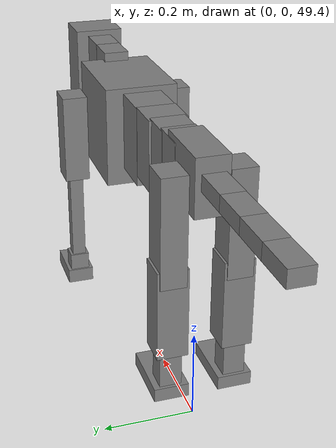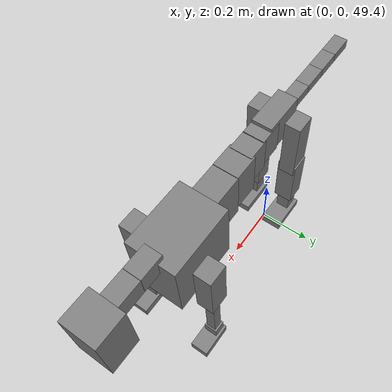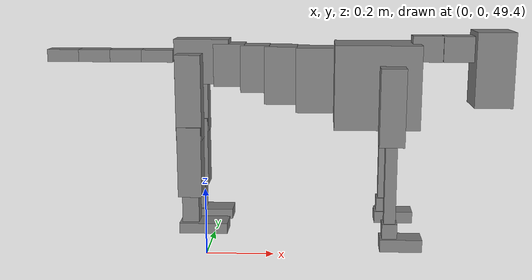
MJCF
<mujoco model="dog">

    <default>
        <joint armature="0.02" stiffness="1" damping="0.2" limited="true"/>
        <geom condim="3" friction="1 0.05 0.05" margin="0.01"/>
        <motor ctrllimited="true" ctrlrange="-1.0 1.0" forcelimited="true" gear="50"/>
    </default>

    <compiler inertiafromgeom="true" angle="radian"/>

    <option timestep="0.016" iterations="50" tolerance="1e-10" solver="Newton" jacobian="dense" cone="pyramidal"/>

    <size nconmax="20000" njmax="60000" nstack="5000000"/>
    <visual>
        <map force="0.1" zfar="30"/>
        <rgba haze="0.15 0.25 0.35 1"/>
        <quality shadowsize="2048"/>
        <global offwidth="800" offheight="800"/>
    </visual>

    <asset>
        <texture type="skybox" builtin="gradient" rgb1="0.3 0.5 0.7" rgb2="0 0 0" width="512" height="512"/>
        <texture name="texplane" type="2d" builtin="checker" rgb1=".2 .3 .4" rgb2=".1 0.15 0.2" width="512" height="512"
                 mark="cross" markrgb=".8 .8 .8"/>
        <texture name="texgeom" type="cube" builtin="flat" mark="cross" width="127" height="1278" rgb1="0.8 0.6 0.4"
                 rgb2="0.8 0.6 0.4" markrgb="1 1 1" random="0.01"/>

        <material name="matplane" reflectance="0.3" texture="texplane" texrepeat="1 1" texuniform="true"/>
        <material name="matgeom" texture="texgeom" texuniform="true" rgba="0.8 0.6 .4 1"/>
    </asset>

    <worldbody>
        <geom name="floor" pos="0 0 0" size="0 0 .25" type="plane" material="matplane" condim="3"/>

        <light directional="false" diffuse=".2 .2 .2" specular="0 0 0" pos="0 0 5" dir="0 0 -1" castshadow="false"/>
        <light mode="targetbodycom" target="torso" directional="false" diffuse=".8 .8 .8" specular="0.3 0.3 0.3"
               pos="0 0 4.0" dir="0 0 -1"/>

        <body name="root" pos="0 0 50">
            <freejoint name="root_1"/>
            <geom type="box" pos="0 0 -0.02" size="0.0774  0.0358  0.063" density="2030"/>

            <body name="spine1" pos="0.054 0 0">
                <joint name="spine1_y" axis="0 1 0" range="0 0.7" limited="true"/>
                <geom type="box" pos="0.02375 0 -0.03" size="0.04375  0.0375  0.05985" density="2030"/>

                <body name="spine2" pos="0.0612 0 0">
                    <joint name="spine2_y" axis="0 1 0" range="-0.15 0.15" limited="true"/>
                    <geom type="box" pos="0.03555  0  -0.04" size="0.04055  0.039  0.06615" density="2030"/>

                    <body name="spine3" pos="0.0730 0 0">
                        <joint name="spine3_y" axis="0 1 0" range="-0.15 0.15" limited="true"/>
                        <geom type="box" pos="0.03555  0  -0.057" size="0.04555  0.0445  0.081" density="2030"/>

                        <body name="spine4" pos="0.0780 0 0">
                            <joint name="spine4_y" axis="0 1 0" range="-0.15 0.15" limited="true"/>
                            <geom type="box" pos="0.05265  0  -0.07" size="0.05265  0.045  0.09135" density="2030"/>

                            <body name="torso" pos="0.1082 0 0">
                                <joint name="torso_y" axis="0 1 0" range="-0.15 0.15" limited="true"/>
                                <geom type="box" pos="0.11925  0  -0.085" size="0.11925  0.085  0.11745"
                                      density="2030"/>

                                <body name="neck1" pos="0.2160  0   0.0180">
                                    <joint name="neck1_y" axis="0 1 0" range="-1.2  -1" limited="true"/>
                                    <geom type="box" pos="0.0423  0  0" size="0.0423  0.03  0.036" density="2325"/>

                                    <body name="neck2" pos="0.0853  0  0">
                                        <joint name="neck2_y" axis="0 1 0" range="0.1  0" limited="true"/>
                                        <geom type="box" pos="0.0423  0  0" size="0.0423  0.03  0.036" density="2325"/>

                                        <body name="head" pos="0.0853  0  0">
                                            <joint name="head_y" axis="0 1 0" range="-0.3  -0.2" limited="true"/>
                                            <geom type="box" pos="0.0531  0  -0.055" size="0.0531  0.06  0.1044"
                                                  density="4030"/>

                                        </body>
                                    </body>
                                </body>

                                <body name="front_shoulder" pos="0.156  0   -0.0480">
                                    <joint name="front_shoulder_y" axis="0 1 0" range="-1 1.5" limited="true"/>
                                    <geom type="box" pos="0 0.13 -0.0798" size="0.0345  0.0295  0.1065" density="1158"/>
                                    <geom type="box" pos="0 -0.13 -0.0798" size="0.0345  0.0295  0.1065"
                                          density="1158"/>

                                    <body name="front_elbow" pos="0  0  -0.1597">
                                        <joint name="front_elbow_y" axis="0 1 0" range="-2 0" limited="true"/>
                                        <geom type="box" pos="0 0.13 -0.1285" size="0.0160  0.0164  0.1285"
                                              density="1081"/>
                                        <geom type="box" pos="0 -0.13 -0.1285" size="0.0160  0.0164  0.1285"
                                              density="1081"/>

                                        <body name="front_wrist" pos="0  0  -0.2571">
                                            <joint name="front_wrist_y" axis="0 1 0" range="-0.2 0" limited="true"/>
                                            <geom type="box" pos="0 0.13 -0.0216" size="0.0208  0.0231  0.0348"
                                                  density="1664"/>
                                            <geom type="box" pos="0 -0.13 -0.0216" size="0.0208  0.0231  0.0348"
                                                  density="1664"/>

                                            <body name="front_finger_end" pos="0  0  -0.0432">
                                                <joint name="front_finger_y" axis="0 1 0" range="-0.4 1"
                                                       limited="true"/>
                                                <geom type="box" pos="0.0315  0.13  -0.0026"
                                                      size="0.0577  0.0315  0.0176" density="1515"/>
                                                <geom type="box" pos="0.0315  -0.13  -0.0026"
                                                      size="0.0577  0.0315  0.0176" density="1515"/>

                                            </body>

                                        </body>
                                    </body>
                                </body>

                            </body>
                        </body>
                    </body>
                </body>
            </body>

            <body name="back_hip" pos="-0.03 0 -0.018">
                <joint name="back_hip_y" axis="0 1 0" range="-1.5 0.3" limited="true"/>
                <geom type="box" pos="0 0.07 -0.0969" size="0.0357  0.0280  0.1197" density="1154"/>
                <geom type="box" pos="0 -0.07 -0.0969" size="0.0357  0.0280  0.1197" density="1154"/>

                <body name="back_knee" pos="0  0  -0.1938">
                    <joint name="back_knee_y" axis="0 1 0" range="0 2.8" limited="true"/>
                    <geom type="box" pos="0 0.07 -0.0849" size="0.0337  0.0332  0.1004" density="1227"/>
                    <geom type="box" pos="0 -0.07 -0.0849" size="0.0337  0.0332  0.1004" density="1227"/>

                    <body name="back_ankle" pos="0  0  -0.1698">
                        <joint name="back_ankle_y" axis="0 1 0" range="-2.2 0" limited="true"/>
                        <geom type="box" pos="0 0.07 -0.0530" size="0.0236  0.0236  0.0642" density="1284"/>
                        <geom type="box" pos="0 -0.07 -0.0530" size="0.0236  0.0236  0.0642" density="1284"/>

                        <body name="back_toe_end" pos="0  0  -0.1059">
                            <joint name="back_toe_y" axis="0 1 0" range="-0.4 1" limited="true"/>
                            <geom type="box" pos="0.0373  0.07  0.0002" size="0.0683  0.0373  0.0148" density="1515"/>
                            <geom type="box" pos="0.0373  -0.07  0.0002" size="0.0683  0.0373  0.0148" density="1515"/>

                        </body>
                    </body>
                </body>
            </body>

            <body name="tail1" pos="-0.074 0 -0.006">
                <joint name="tail1_y" axis="0 1 0" range="-0.2 0.2" limited="true"/>
                <geom type="box" pos="-0.0536  0  0" size="0.045  0.025  0.0175" density="1587"/>

                <body name="tail2" pos="-0.09 0 0">
                    <joint name="tail2_y" axis="0 1 0" range="-0.2 0.2" limited="true"/>
                    <geom type="box" pos="-0.0536  0  0" size="0.045  0.025  0.0175" density="1587"/>

                    <body name="tail3" pos="-0.09 0 0">
                        <joint name="tail3_y" axis="0 1 0" range="-0.2 0.2" limited="true"/>
                        <geom type="box" pos="-0.0536  0  0" size="0.045  0.025  0.0175" density="1587"/>

                        <body name="tail4" pos="-0.09 0 0">
                            <joint name="tail4_y" axis="0 1 0" range="-0.2 0.2" limited="true"/>
                            <geom type="box" pos="-0.0536  0  0" size="0.045  0.025  0.0175" density="1587"/>

                        </body>
                    </body>
                </body>
            </body>
        </body>
    </worldbody>

    <actuator>
        <motor joint="spine1_y" forcerange="-150 150     "/>
        <motor joint="spine2_y" forcerange="-150 150     "/>
        <motor joint="spine3_y" forcerange="-150 150     "/>
        <motor joint="spine4_y" forcerange="-150 150     "/>
        <motor joint="torso_y" forcerange="-150 150     "/>
        <motor joint="neck1_y" forcerange="-100 100       "/>
        <motor joint="neck2_y" forcerange="-100 100       "/>
        <motor joint="head_y" forcerange="-150 150       "/>
        <motor joint="front_shoulder_y" forcerange="-112.35 184.26"/>
        <motor joint="front_elbow_y" forcerange="-111.43 107.84"/>
        <motor joint="front_wrist_y" forcerange="-97.25 87.56"/>
        <motor joint="front_finger_y" forcerange="-66.01 61.80"/>
        <motor joint="back_hip_y" forcerange="-259.05 314.59"/>
        <motor joint="back_knee_y" forcerange="-359.34 323.72"/>
        <motor joint="back_angle_y" forcerange="-89.15 189.24"/>
        <motor joint="back_toe_y" forcerange="-134.44 83.59"/>
        <motor joint="tail1_y" forcerange="-50 50     "/>
        <motor joint="tail2_y" forcerange="-50 50     "/>
        <motor joint="tail3_y" forcerange="-50 50     "/>
        <motor joint="tail4_y" forcerange="-50 50     "/>
    </actuator>
</mujoco>
